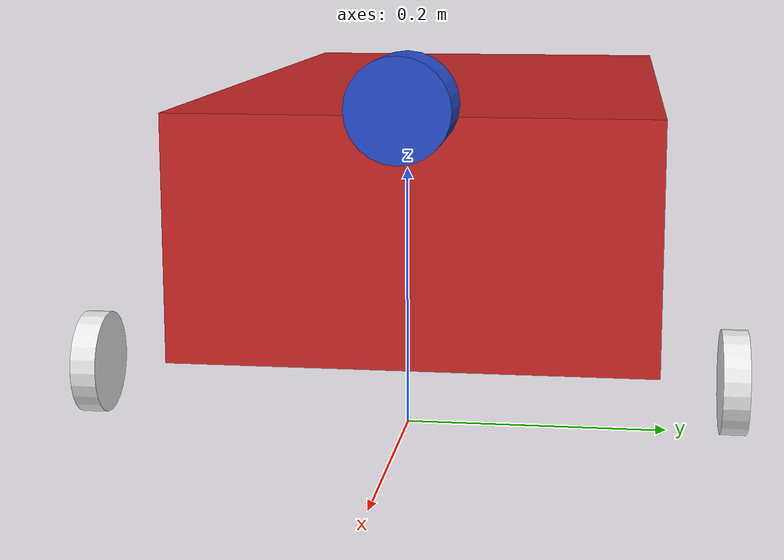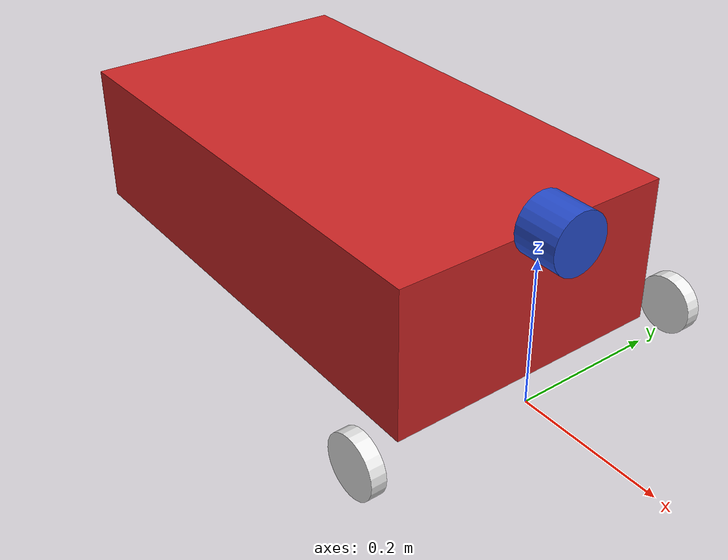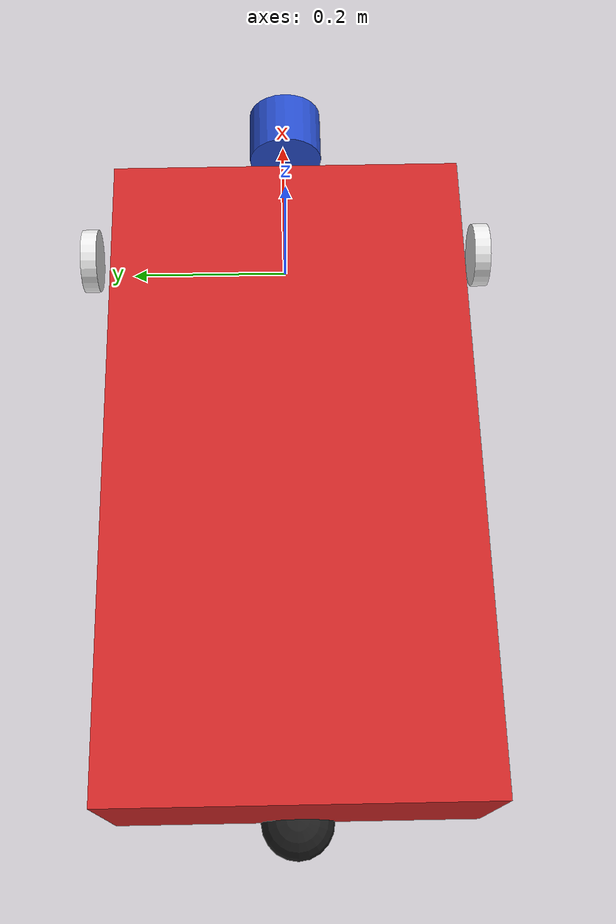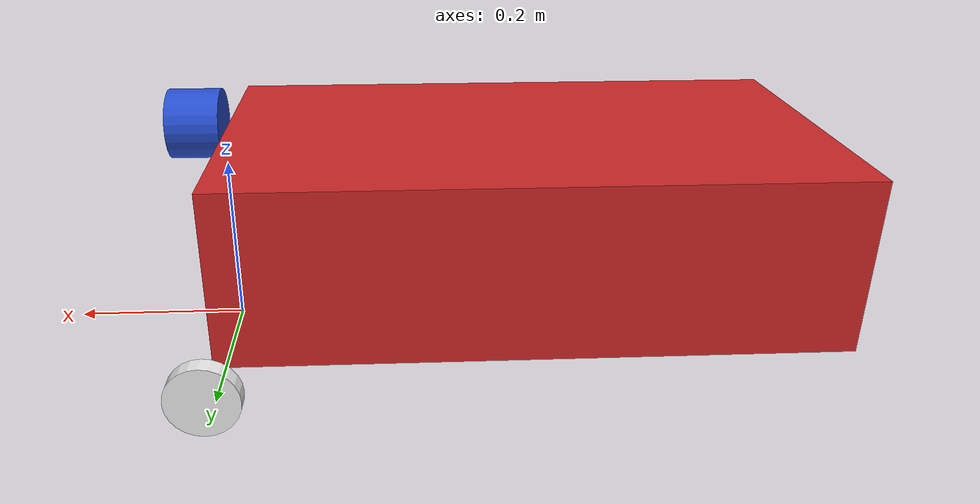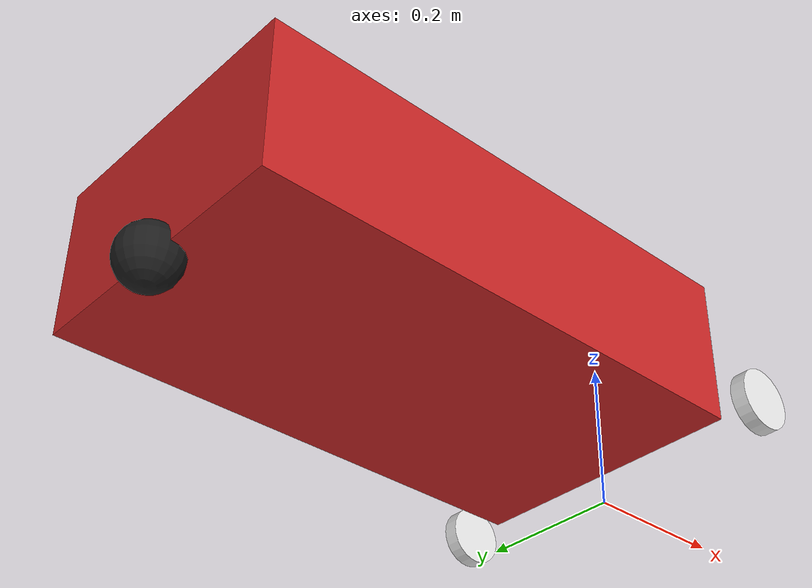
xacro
<?xml version="1.0" ?>
<robot name="rob1" xmlns:xacro="http://ros.org/wiki/xacro">

    <!-- ****************** INCLUDES *******************************  -->

    <xacro:include filename="material.xacro"/>
    <xacro:include filename="inertial.xacro"/>

    <!-- ****************** ROBOT CONSTANTS *******************************  -->
    <!-- Define the size of the robot's main chassis in meters x y z-->
    <xacro:property name="base_width" value="0.7"/>
    <xacro:property name="base_length" value="0.39"/>
    <xacro:property name="base_height" value="0.20"/>

    <!-- Define the shape of the robot's two back wheels in meters -->
    <xacro:property name="wheel_radius" value="0.04"/>
    <xacro:property name="wheel_width" value="0.02"/>

    <!-- x-axis points forward, y-axis points to left, z-axis points upwards -->
    <!-- Define the gap between the wheel and chassis along y-axis in meters -->
    <xacro:property name="wheel_ygap" value="0.25"/>

    <!-- Position the wheels along the z-axis -->
    <xacro:property name="wheel_zoff" value="0.05"/>

    <!-- Position the wheels along the x-axis -->
    <xacro:property name="wheel_xoff" value="0.221"/>

    <!-- Position the caster wheel along the x-axis -->
    <xacro:property name="caster_xoff" value="0.217"/>

    <!-- ****************** ROBOT BASE FOOTPRINT ***************************  -->
    <!-- Define the center of the main robot chassis projected on the ground -->
    <link name="base_link"/>

    <joint name="corps_joint" type="fixed">
        <parent link="base_link"/>
        <child link="corps_link" />
        <origin xyz="${-base_width/2.0} 0 ${base_height/2+wheel_radius}" rpy="0 0 0"/>
    </joint>
    <!-- ********************** ROBOT BASE *********************************  -->
    <link name="corps_link">
        <visual>
            <origin xyz="0 0 0" rpy="0 0 0"/>
            <geometry>
                <box size="${base_width} ${base_length} ${base_height}"/>
            </geometry>
            <material name="red"/>
        </visual>

        <collision>
            <geometry>
                <box size="${base_width}  ${base_length} ${base_height}"/>
            </geometry>
        </collision>

        <xacro:box_inertia m="1.0" w="${base_width}" d="${base_length}" h="${base_height}"/>
    </link>
  <!-- *********************** DRIVE WHEELS LINKS ******************************  -->
   <link name="left_wheel_link">
      <visual>
        <origin xyz="0 0 0" rpy="${pi/2} 0 0"/>
        <geometry>
            <cylinder radius="${wheel_radius}" length="${wheel_width}"/>
        </geometry>
        <material name="white"/>
      </visual>

      <collision>
        <origin xyz="0 0 0" rpy="${pi/2} 0 0"/>
        <geometry>
           <cylinder radius="${wheel_radius}" length="${wheel_width}"/>
        </geometry>
      </collision>

      <xacro:cylinder_inertia m="0.1" r="${wheel_radius}" h="${wheel_width}"/>
    </link>

   <link name="right_wheel_link">
      <visual>
        <origin xyz="0 0 0" rpy="${pi/2} 0 0"/>
        <geometry>
            <cylinder radius="${wheel_radius}" length="${wheel_width}"/>

        </geometry>
        <material name="white"/>
      </visual>

      <collision>
        <origin xyz="0 0 0" rpy="${pi/2} 0 0"/>
        <geometry>
           <cylinder radius="${wheel_radius}" length="${wheel_width}"/>
        </geometry>
      </collision>

      <xacro:cylinder_inertia m="0.1" r="${wheel_radius}" h="${wheel_width}"/>
    </link>

  <!-- *********************** DRIVE WHEELS JOINTS ******************************  -->
    <joint name="left_wheel_joint" type="continuous">
        <parent link="base_link"/>
        <child link="left_wheel_link"/>
        <origin xyz="0 ${wheel_ygap} ${wheel_radius}" rpy="0 0 0"/>
        <limit effort="30" velocity="1.0"/>
        <axis xyz="0 1 0"/>
    </joint>

    <joint name="right_wheel_joint" type="continuous">
        <parent link="base_link"/>
        <child link="right_wheel_link"/>
        <origin xyz="0 -${wheel_ygap} ${wheel_radius}" rpy="0 0 0"/>
        <limit effort="30" velocity="1.0"/>
        <axis xyz="0 1 0"/>
    </joint>
    <!-- CASTER WHEEL -->

    <joint name="caster_wheel_joint" type="fixed">
        <parent link="base_link"/>
        <child link="caster_wheel"/>
        <origin xyz="-${base_width} 0 ${wheel_radius}" rpy="0 0 0"/>
    </joint>

    <link name="caster_wheel">
        <visual>
            <geometry>
                <sphere radius="${wheel_radius}" />
            </geometry>
            <material name="black"/>
        </visual>
        <collision>
            <geometry>
                <sphere radius="${wheel_radius}" />
            </geometry>
        </collision>
    </link>

 <!-- CAMEAR -->

    <link name="camera_link">
        <visual>
            <origin xyz="0.03 0 0" rpy="0 ${pi/2} 0"/>
            <geometry>
                <cylinder length="0.06" radius="0.04" />
            </geometry>
            <material name="blue" />
        </visual>

    </link>
    <joint name="camera_joint" type="fixed">
        <origin xyz="0 0 0.25" rpy="0 0 0"/>
        <parent link="base_link"/>
        <child link="camera_link"/>
    </joint>

    <xacro:include filename="my_2roues-gazebo.xacro" />

</robot>

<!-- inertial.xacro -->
<robot  xmlns:xacro="http://ros.org/wiki/xacro">

    <!-- Define intertial property macros  -->
    <xacro:macro name="box_inertia" params="m w h d">
        <inertial>
            <origin xyz="0 0 0" rpy="1.57 0 1.57"/>
            <mass value="${m}"/>
            <inertia ixx="${(m/12) * (h*h + d*d)}" ixy="0.0" ixz="0.0" iyy="${(m/12) * (w*w + d*d)}" iyz="0.0" izz="${(m/12) * (w*w + h*h)}"/>
        </inertial>
    </xacro:macro>

    <xacro:macro name="cylinder_inertia" params="m r h">
        <inertial>
            <origin xyz="0 0 0" rpy="1.57 0 0" />
            <mass value="${m}"/>
            <inertia ixx="${(m/12) * (3*r*r + h*h)}" ixy = "0" ixz = "0" iyy="${(m/12) * (3*r*r + h*h)}" iyz = "0" izz="${(m/2) * (r*r)}"/>
        </inertial>
    </xacro:macro>

    <xacro:macro name="sphere_inertia" params="m r">
        <inertial>
            <mass value="${m}"/>
            <inertia ixx="${(2/5) * m * (r*r)}" ixy="0.0" ixz="0.0" iyy="${(2/5) * m * (r*r)}" iyz="0.0" izz="${(2/5) * m * (r*r)}"/>
        </inertial>
    </xacro:macro>

</robot>

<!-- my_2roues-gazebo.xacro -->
<robot xmlns:xacro="http://ros.org/wiki/xacro">

<gazebo reference="corps_link">
    <material>Gazebo/Red</material>
</gazebo>
<gazebo reference="left_wheel_link">
    <material>Gazebo/White</material>
</gazebo>
<gazebo reference="right_wheel_link">
    <material>Gazebo/White</material>
</gazebo>

<gazebo>
    <plugin name="gazebo_ros_joint_state_publisher"
        filename="libgazebo_ros_joint_state_publisher.so">
        <update_rate>20</update_rate>
        <joint_name>left_wheel_joint</joint_name>
        <joint_name>right_wheel_joint</joint_name>
    </plugin>
</gazebo>

<!-- CAMERA  -->

<joint name="camera_optical_joint" type="fixed">
    <origin xyz="0 0 0" rpy="0 0 0"/>
    <parent link="camera_link"/>
    <child link="camera_link_optical"/>
</joint>
<link name="camera_link_optical"></link>
    <gazebo reference="camera_link">
        <sensor type="camera" name="my_camera">
            <update_rate>20</update_rate>
            <visualize>true</visualize>
            <camera name="cam">
                <horizontal_fov>1.3962634</horizontal_fov>
                <image>
                    <width>640</width>
                    <height>480</height>
                    <format>R8B8G8</format>
                </image>
                <clip>
                    <near>0.02</near>
                    <far>300</far>
                </clip>
                <noise>
                    <type>gaussian</type>
                    <mean>0.0</mean>
                    <stddev>0.007</stddev>
                </noise>
            </camera>
            <plugin name="camera_controller" filename="libgazebo_ros_camera.so">
                <frame_name>camera_link_optical</frame_name>
                <min_depth>0.1</min_depth>
                <max_depth>500</max_depth>
            </plugin>
        </sensor>
    </gazebo>
<!-- PLUGIN DIFF DRIVE -->
     <gazebo>
        <plugin name='diff_drive' filename='libgazebo_ros_diff_drive.so'>
            <!-- Wheel Information -->
            <left_joint>left_wheel_joint</left_joint>
            <right_joint>right_wheel_joint</right_joint>
            <wheel_separation>${wheel_ygap*2}</wheel_separation>
            <wheel_diameter>${wheel_radius}</wheel_diameter>

            <!-- Limits -->
            <max_wheel_torque>200</max_wheel_torque>
            <max_wheel_acceleration>10.0</max_wheel_acceleration>

            <!-- Output -->
            <odometry_frame>odom</odometry_frame>
            <robot_base_frame>base_link</robot_base_frame>
            <publish_odom>true</publish_odom>
            <publish_odom_tf>true</publish_odom_tf>
            <publish_wheel_tf>true</publish_wheel_tf>
        </plugin>
    </gazebo>

<!-- CASTER FRICTION -->
    <gazebo reference="caster_wheel">
        <material>Gazebo/Black</material>
        <mu1 value="0.001"/>
        <mu2 value="0.001"/>
    </gazebo>

</robot>
